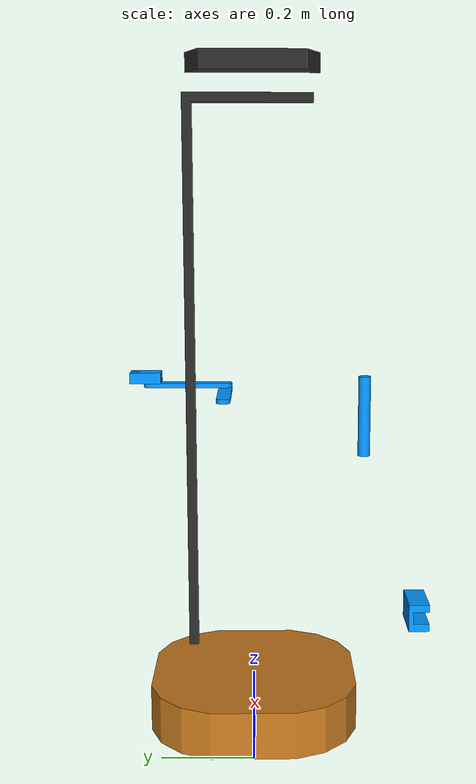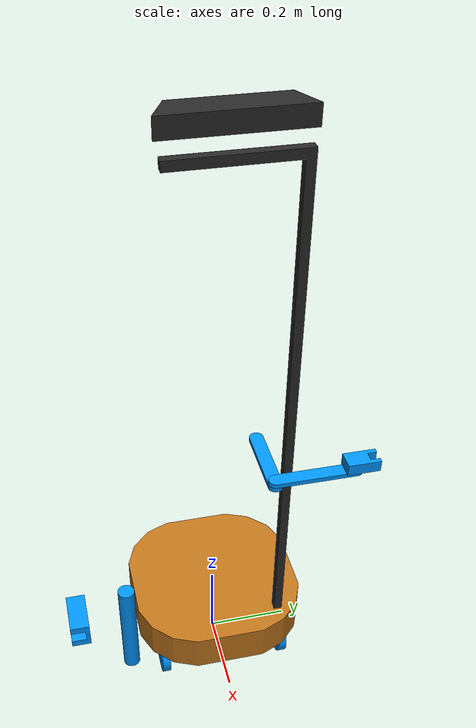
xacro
<!--URDF generated by ONSHAPE BY PTC INC, 1.222-->
<robot name="arips" xmlns:xacro="http://www.ros.org/wiki/xacro">
    <xacro:arg name="use_ros2_control" default="false" />
    <xacro:arg name="serial_port" default="/dev/feetech_servo" />
    <xacro:arg name="baud_rate" default="500000" />
    <xacro:arg name="arm_enabled" default="true" />
    <xacro:arg name="kinect_enabled" default="true" />
    <xacro:arg name="enable_mock_mode" default="false" />
    <xacro:arg name="sim" default="false" />
    <xacro:include filename="$(find arips_description)/urdf/arips.ros2_control.xacro" />
    <link name="alu">
        <inertial>
            <mass value="0.0005768" />
            <origin xyz="0.14 0.111595 0.904595" rpy="0 -0 0" />
            <inertia ixx="8.68884e-05" ixy="0" ixz="0" iyy="8.48644e-05" iyz="6.53947e-06" izz="2.06249e-06" />
        </inertial>
        <visual>
            <origin xyz="0 0 0" rpy="0 -0 0" />
            <geometry>
                <mesh filename="package://arips_description/meshes/Alu.stl" scale="1 1 1" />
            </geometry>
            <material name="0.156863_0.156863_0.156863_0.000000_0.000000">
                <color rgba="0.156863 0.156863 0.156863 1" />
            </material>
        </visual>
        <collision>
            <origin xyz="0 0 0" rpy="0 -0 0" />
            <geometry>
                <mesh filename="package://arips_description/meshes/Alu.stl" scale="1 1 1" />
            </geometry>
        </collision>
    </link>
    <link name="base_link">
        <inertial>
            <mass value="0.0149878" />
            <origin xyz="-3.78648e-18 -4.2386e-18 0.159" rpy="0 -0 0" />
            <inertia ixx="0.000198722" ixy="0" ixz="0" iyy="0.000198722" iyz="0" izz="0.000374423" />
        </inertial>
        <visual>
            <origin xyz="0 0 0" rpy="0 -0 0" />
            <geometry>
                <mesh filename="package://arips_description/meshes/base_link.stl" scale="1 1 1" />
            </geometry>
            <material name="0.756863_0.462745_0.109804_0.000000_0.000000">
                <color rgba="0.756863 0.462745 0.109804 1" />
            </material>
        </visual>
        <collision>
            <origin xyz="0 0 0" rpy="0 -0 0" />
            <geometry>
                <mesh filename="package://arips_description/meshes/base_link.stl" scale="1 1 1" />
            </geometry>
        </collision>
    </link>
    <link name="door_gripper">
        <inertial>
            <mass value="0.000180456" />
            <origin xyz="-1.64285e-18 -0.0248816 -4.02491e-17" rpy="0 -0 0" />
            <inertia ixx="1.12954e-07" ixy="0" ixz="0" iyy="2.30182e-07" iyz="0" izz="1.83532e-07" />
        </inertial>
        <visual>
            <origin xyz="0 -0.005 0" rpy="0 -0 0" />
            <geometry>
                <mesh filename="package://arips_description/meshes/Door_gripper.stl" scale="1 1 1" />
            </geometry>
            <material name="0.000000_0.588235_1.000000_0.000000_0.000000">
                <color rgba="0 0.588235 1 1" />
            </material>
        </visual>
        <collision>
            <origin xyz="0 -0.005 0" rpy="0 -0 0" />
            <geometry>
                <mesh filename="package://arips_description/meshes/Door_gripper.stl" scale="1 1 1" />
            </geometry>
        </collision>
    </link>
    <link name="kinect_mount">
        <inertial>
            <mass value="0.00065" />
            <origin xyz="0.0013 0.005 0.05" rpy="0 -0 0" />
            <inertia ixx="3.52083e-06" ixy="0" ixz="0" iyy="3.14422e-07" iyz="0" izz="3.66192e-06" />
        </inertial>
        <visual>
            <origin xyz="-0.14 0.005 -1.4114" rpy="0 -0 0" />
            <geometry>
                <mesh filename="package://arips_description/meshes/Kinect.stl" scale="1 1 1" />
            </geometry>
            <material name="0.156863_0.156863_0.156863_0.000000_0.000000">
                <color rgba="0.156863 0.156863 0.156863 1" />
            </material>
        </visual>
        <collision>
            <origin xyz="-0.14 0.005 -1.4114" rpy="0 -0 0" />
            <geometry>
                <mesh filename="package://arips_description/meshes/Kinect.stl" scale="1 1 1" />
            </geometry>
        </collision>
    </link>
    <link name="left_wheel">
        <inertial>
            <mass value="0.000190066" />
            <origin xyz="0.1 0.155 0.055" rpy="0 -0 0" />
            <inertia ixx="1.50073e-07" ixy="0" ixz="0" iyy="2.87475e-07" iyz="0" izz="1.50073e-07" />
        </inertial>
        <visual>
            <origin xyz="0 0 0" rpy="0 -0 0" />
            <geometry>
                <mesh filename="package://arips_description/meshes/left_wheel.stl" scale="1 1 1" />
            </geometry>
            <material name="0.000000_0.588235_1.000000_0.000000_0.000000">
                <color rgba="0 0.588235 1 1" />
            </material>
        </visual>
        <!-- Gazebo drives with its own wheel joints, so the fixed wheel meshes must not touch the floor -->
        <xacro:unless value="$(arg sim)">
            <collision>
                <origin xyz="0 0 0" rpy="0 -0 0" />
                <geometry>
                    <mesh filename="package://arips_description/meshes/left_wheel.stl" scale="1 1 1" />
                </geometry>
            </collision>
        </xacro:unless>
    </link>
    <link name="link_0">
        <inertial>
            <mass value="0.000359788" />
            <origin xyz="-0.02775 0.0035 0.037" rpy="0 -0 0" />
            <inertia ixx="2.22229e-07" ixy="0" ixz="0" iyy="5.30275e-07" iyz="0" izz="4.24138e-07" />
        </inertial>
        <visual>
            <origin xyz="0 0 -0.192" rpy="0 -0 0" />
            <geometry>
                <mesh filename="package://arips_description/meshes/link_0.stl" scale="1 1 1" />
            </geometry>
            <material name="0.000000_0.588235_1.000000_0.000000_0.000000">
                <color rgba="0 0.588235 1 1" />
            </material>
        </visual>
        <collision>
            <origin xyz="0 0 -0.192" rpy="0 -0 0" />
            <geometry>
                <mesh filename="package://arips_description/meshes/link_0.stl" scale="1 1 1" />
            </geometry>
        </collision>
    </link>
    <link name="link_1">
        <inertial>
            <mass value="0.0003603" />
            <origin xyz="-0.0729 -6.73556e-19 -0.03355" rpy="0 -0 0" />
            <inertia ixx="1.65931e-07" ixy="0" ixz="0" iyy="9.80594e-07" iyz="0" izz="8.76155e-07" />
        </inertial>
        <visual>
            <origin xyz="0.0962 -6.73556e-19 -0.25755" rpy="0 -0 0" />
            <geometry>
                <mesh filename="package://arips_description/meshes/link_1.stl" scale="1 1 1" />
            </geometry>
            <material name="0.000000_0.588235_1.000000_0.000000_0.000000">
                <color rgba="0 0.588235 1 1" />
            </material>
        </visual>
        <collision>
            <origin xyz="0.0962 -6.73556e-19 -0.25755" rpy="0 -0 0" />
            <geometry>
                <mesh filename="package://arips_description/meshes/link_1.stl" scale="1 1 1" />
            </geometry>
        </collision>
    </link>
    <link name="link_2">
        <inertial>
            <mass value="0.000317356" />
            <origin xyz="-0.0629 -6.43626e-19 -0.03355" rpy="0 -0 0" />
            <inertia ixx="1.46153e-07" ixy="0" ixz="0" iyy="6.96789e-07" iyz="0" izz="6.04797e-07" />
        </inertial>
        <visual>
            <origin xyz="0.2662 -6.73556e-19 -0.25755" rpy="0 -0 0" />
            <geometry>
                <mesh filename="package://arips_description/meshes/link_2.stl" scale="1 1 1" />
            </geometry>
            <material name="0.000000_0.588235_1.000000_0.000000_0.000000">
                <color rgba="0 0.588235 1 1" />
            </material>
        </visual>
        <collision>
            <origin xyz="0.2662 -6.73556e-19 -0.25755" rpy="0 -0 0" />
            <geometry>
                <mesh filename="package://arips_description/meshes/link_2.stl" scale="1 1 1" />
            </geometry>
        </collision>
    </link>
    <link name="link_3">
        <inertial>
            <mass value="0.000135621" />
            <origin xyz="5.55112e-17 -0.0227949 -0.031" rpy="0 -0 0" />
            <inertia ixx="9.72341e-08" ixy="0" ixz="0" iyy="5.514e-08" iyz="0" izz="6.5486e-08" />
        </inertial>
        <visual>
            <origin xyz="0.4162 4.57793e-17 -0.20595" rpy="0 -0 0" />
            <geometry>
                <mesh filename="package://arips_description/meshes/link_3.stl" scale="1 1 1" />
            </geometry>
            <material name="0.000000_0.588235_1.000000_0.000000_0.000000">
                <color rgba="0 0.588235 1 1" />
            </material>
        </visual>
        <collision>
            <origin xyz="0.4162 4.57793e-17 -0.20595" rpy="0 -0 0" />
            <geometry>
                <mesh filename="package://arips_description/meshes/link_3.stl" scale="1 1 1" />
            </geometry>
        </collision>
    </link>
    <link name="right_wheel">
        <inertial>
            <mass value="0.000190066" />
            <origin xyz="0.1 -0.155 0.055" rpy="0 -0 0" />
            <inertia ixx="1.50073e-07" ixy="0" ixz="0" iyy="2.87475e-07" iyz="0" izz="1.50073e-07" />
        </inertial>
        <visual>
            <origin xyz="0 0 0" rpy="0 -0 0" />
            <geometry>
                <mesh filename="package://arips_description/meshes/right_wheel.stl" scale="1 1 1" />
            </geometry>
            <material name="0.000000_0.588235_1.000000_0.000000_0.000000">
                <color rgba="0 0.588235 1 1" />
            </material>
        </visual>
        <!-- Gazebo drives with its own wheel joints, so the fixed wheel meshes must not touch the floor -->
        <xacro:unless value="$(arg sim)">
            <collision>
                <origin xyz="0 0 0" rpy="0 -0 0" />
                <geometry>
                    <mesh filename="package://arips_description/meshes/right_wheel.stl" scale="1 1 1" />
                </geometry>
            </collision>
        </xacro:unless>
    </link>
    <joint name="group_1_fastened_joint" type="fixed">
        <origin xyz="0 0 0" rpy="0 -0 0" />
        <axis xyz="-0 -0 -1" />
        <parent link="base_link" />
        <child link="left_wheel" />
    </joint>
    <joint name="group_1_fastened_joint_1" type="fixed">
        <origin xyz="0 0 0" rpy="0 -0 0" />
        <axis xyz="-0 -0 -1" />
        <parent link="left_wheel" />
        <child link="right_wheel" />
    </joint>
    <joint name="group_1_fastened_joint_2" type="fixed">
        <origin xyz="0 0 0" rpy="0 -0 0" />
        <axis xyz="-0 -0 -1" />
        <parent link="right_wheel" />
        <child link="alu" />
    </joint>
    <joint name="joint_2" type="revolute">
        <origin xyz="-0.0962 2.77556e-17 0.06555" rpy="1.9945e-20 8.84458e-20 -5.55112e-17" />
        <axis xyz="0 0 1" />
        <parent link="link_0" />
        <child link="link_1" />
        <limit effort="1" velocity="2" lower="-2.26893" upper="2.26893" />
    </joint>
    <joint name="joint_3" type="revolute">
        <origin xyz="-0.17 5.55112e-17 0" rpy="-2.75035e-20 -8.55668e-20 1.98448e-30" />
        <axis xyz="0 0 1" />
        <parent link="link_1" />
        <child link="link_2" />
        <limit effort="1" velocity="2" lower="-2.44346" upper="2.44346" />
    </joint>
    <joint name="joint_4" type="revolute">
        <origin xyz="-0.15 -3.33067e-16 -0.0516" rpy="1.35577e-20 5.59002e-22 -1.5708" />
        <axis xyz="-0 -0 -1" />
        <parent link="link_2" />
        <child link="link_3" />
        <limit effort="1" velocity="2" lower="-2.44346" upper="2.44346" />
    </joint>
    <joint name="joint_door_gripper" type="continuous">
        <origin xyz="-2.77556e-16 -0.0533 -0.0248" rpy="1.39607e-20 -5.75927e-18 -9.86077e-32" />
        <axis xyz="0 -1 0" />
        <parent link="link_3" />
        <child link="door_gripper" />
    </joint>
    <joint name="joint_slider" type="prismatic">
        <origin xyz="0.14 0.135 0.292" rpy="0 -0 1.5708" />
        <axis xyz="0 0 1" />
        <parent link="base_link" />
        <child link="link_0" />
        <limit effort="1" velocity="0.2" lower="0.0" upper="0.871" />
    </joint>
    <joint name="kinect_joint" type="revolute">
        <origin xyz="0.14 -0.005 1.4114" rpy="0 -0 0" />
        <axis xyz="0 -1 0" />
        <parent link="base_link" />
        <child link="kinect_mount" />
        <limit effort="1" velocity="1" lower="-1.65806" upper="0.5236" />
    </joint>

    <xacro:if value="$(arg use_ros2_control)">
        <xacro:ros2_control_arips serial_port="$(arg serial_port)" baud_rate="$(arg baud_rate)" arm_enabled="$(arg arm_enabled)" kinect_enabled="$(arg kinect_enabled)" enable_mock_mode="'$(arg enable_mock_mode)'" />
    </xacro:if>
</robot>
